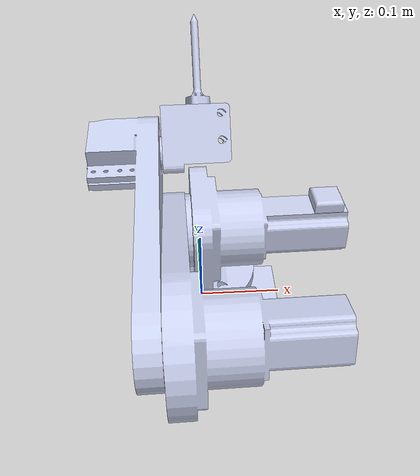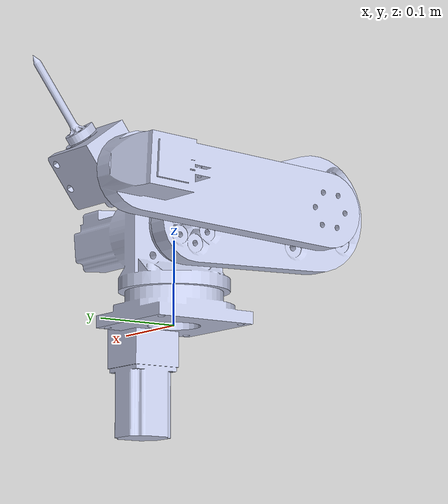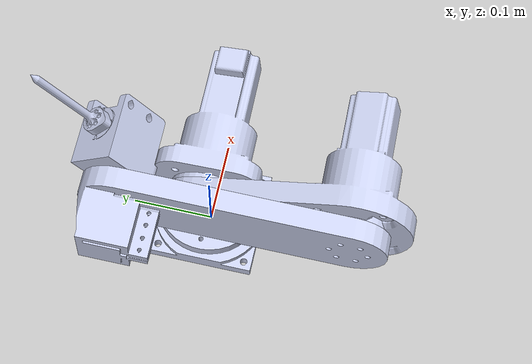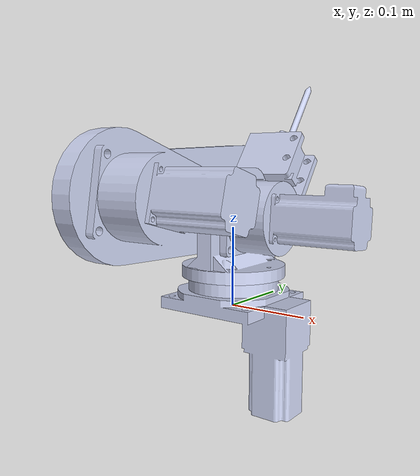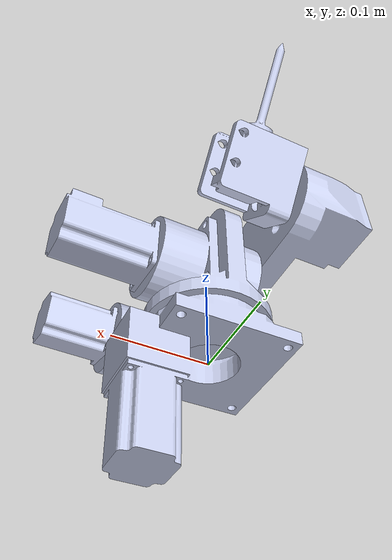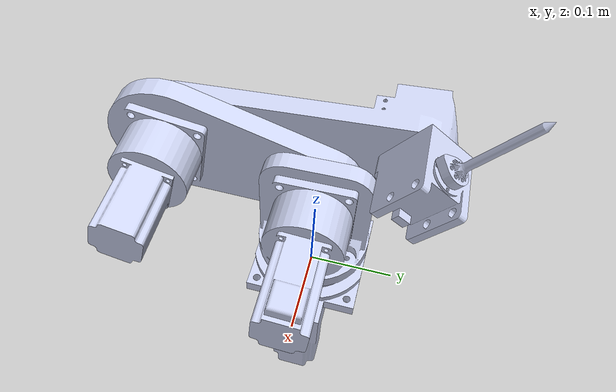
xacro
<?xml version="1.0"?>
<robot xmlns:xacro="http://www.ros.org/wiki/xacro" name="armassem1">
    <xacro:arg name="initial_positions_file" default="initial_positions.yaml" />
    <xacro:arg name="use_mock_hardware" default="true" />
    <xacro:arg name="serial_port" default="/dev/ttyACM0" />
    <xacro:arg name="baud_rate" default="115200" />

    <!-- Import armassem1 urdf file -->
    <xacro:include filename="$(find my_robot_description)/urdf/armassem1.urdf" />

    <!-- Import control_xacro -->
    <xacro:include filename="armassem1.ros2_control.xacro" />

    <xacro:armassem1_ros2_control
        name="ArmAssem1System"
        initial_positions_file="$(arg initial_positions_file)"
        use_mock_hardware="$(arg use_mock_hardware)"
        serial_port="$(arg serial_port)"
        baud_rate="$(arg baud_rate)"/>

</robot>

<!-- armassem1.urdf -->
<robot
  name="armassem1">
  <link
    name="base_link">
    <inertial>
      <origin
        xyz="0.0349237105962137 9.43689570931383E-16 -0.0227211978020699"
        rpy="0 0 0" />
      <mass
        value="0.757810573021914" />
      <inertia
        ixx="0.000911546039100459"
        ixy="9.93119423840832E-20"
        ixz="0.000186403543827476"
        iyy="0.00138565534873441"
        iyz="1.38615041934029E-20"
        izz="0.00175776275854375" />
    </inertial>
    <visual>
      <origin
        xyz="0 0 0"
        rpy="0 0 0" />
      <geometry>
        <mesh
          filename="package://my_robot_description/meshes/base_link.STL" />
      </geometry>
      <material
        name="">
        <color
          rgba="0.792156862745098 0.819607843137255 0.933333333333333 1" />
      </material>
    </visual>
    <collision>
      <origin
        xyz="0 0 0"
        rpy="0 0 0" />
      <geometry>
        <mesh
          filename="package://my_robot_description/meshes/base_link.STL" />
      </geometry>
    </collision>
  </link>
  <link
    name="Joint_1_Link">
    <inertial>
      <origin
        xyz="0.0405469299298919 0.0626150506809338 -0.000752064518925455"
        rpy="0 0 0" />
      <mass
        value="1.20678578482328" />
      <inertia
        ixx="0.00189287213190815"
        ixy="-1.35402782159307E-05"
        ixz="-9.86704102524145E-07"
        iyy="0.00162182660523015"
        iyz="1.6034377467274E-06"
        izz="0.0017694470522458" />
    </inertial>
    <visual>
      <origin
        xyz="0 0 0"
        rpy="0 0 0" />
      <geometry>
        <mesh
          filename="package://my_robot_description/meshes/Joint_1_Link.STL" />
      </geometry>
      <material
        name="">
        <color
          rgba="0.792156862745098 0.819607843137255 0.933333333333333 1" />
      </material>
    </visual>
    <collision>
      <origin
        xyz="0 0 0"
        rpy="0 0 0" />
      <geometry>
        <mesh
          filename="package://my_robot_description/meshes/Joint_1_Link.STL" />
      </geometry>
    </collision>
  </link>
  <joint
    name="Joint_1_Joint"
    type="revolute">
    <origin
      xyz="0 0 0.0395"
      rpy="1.5707963267949 0 0" />
    <parent
      link="base_link" />
    <child
      link="Joint_1_Link" />
    <axis
      xyz="0 1 0" />
    <limit
      lower="0"
      upper="3"
      effort="10"
      velocity="10" />
    <dynamics
      damping="0.1"
      friction="0.1" />
  </joint>
  <link
    name="Joint_2_Link">
    <inertial>
      <origin
        xyz="0.141005083547914 0.0248630006521554 -0.0184917815755161"
        rpy="0 0 0" />
      <mass
        value="1.35022943079148" />
      <inertia
        ixx="0.00163542822233478"
        ixy="-0.000467823717815473"
        ixz="-4.6739922817519E-06"
        iyy="0.00420609843101496"
        iyz="-8.24151661478894E-07"
        izz="0.00493640337425489" />
    </inertial>
    <visual>
      <origin
        xyz="0 0 0"
        rpy="0 0 0" />
      <geometry>
        <mesh
          filename="package://my_robot_description/meshes/Joint_2_Link.STL" />
      </geometry>
      <material
        name="">
        <color
          rgba="0.792156862745098 0.819607843137255 0.933333333333333 1" />
      </material>
    </visual>
    <collision>
      <origin
        xyz="0 0 0"
        rpy="0 0 0" />
      <geometry>
        <mesh
          filename="package://my_robot_description/meshes/Joint_2_Link.STL" />
      </geometry>
    </collision>
  </link>
  <joint
    name="Joint_2_Joint"
    type="revolute">
    <origin
      xyz="-0.016597 0.075 0.00028971"
      rpy="0 -1.5533 0" />
    <parent
      link="Joint_1_Link" />
    <child
      link="Joint_2_Link" />
    <axis
      xyz="0 0 1" />
    <limit
      lower="0"
      upper="3"
      effort="10"
      velocity="10" />
    <dynamics
      damping="0.1"
      friction="0.1" />
  </joint>
  <link
    name="Joint_3_Link">
    <inertial>
      <origin
        xyz="-0.0378423132746606 0.163913074985648 -0.0229417264709312"
        rpy="0 0 0" />
      <mass
        value="1.00180627644925" />
      <inertia
        ixx="0.00899364481371942"
        ixy="0.00186483025601723"
        ixz="-0.000148170720752349"
        iyy="0.00134432679410632"
        iyz="0.000641797835347055"
        izz="0.00962203685211232" />
    </inertial>
    <visual>
      <origin
        xyz="0 0 0"
        rpy="0 0 0" />
      <geometry>
        <mesh
          filename="package://my_robot_description/meshes/Joint_3_Link.STL" />
      </geometry>
      <material
        name="">
        <color
          rgba="0.792156862745098 0.819607843137255 0.933333333333333 1" />
      </material>
    </visual>
    <collision>
      <origin
        xyz="0 0 0"
        rpy="0 0 0" />
      <geometry>
        <mesh
          filename="package://my_robot_description/meshes/Joint_3_Link.STL" />
      </geometry>
    </collision>
  </link>
  <joint
    name="Joint_3_Joint"
    type="revolute">
    <origin
      xyz="0.177265395542198 0.0312566719800476 0.0266"
      rpy="-3.14159265358979 0 -1.39626340159547" />
    <parent
      link="Joint_2_Link" />
    <child
      link="Joint_3_Link" />
    <axis
      xyz="0 0 1" />
    <limit
      lower="0"
      upper="3"
      effort="10"
      velocity="10" />
    <dynamics
      damping="0.1"
      friction="0.1" />
  </joint>
  <link
    name="Joint_4_Link">
    <inertial>
      <origin
        xyz="0.0127282167932845 0.0345924928063405 -0.0151688980907147"
        rpy="0 0 0" />
      <mass
        value="0.288410929877738" />
      <inertia
        ixx="0.000222449744842067"
        ixy="-3.42038497163042E-06"
        ixz="1.41427504243203E-05"
        iyy="0.000219463160870434"
        iyz="4.07625607799588E-06"
        izz="0.000217462247879599" />
    </inertial>
    <visual>
      <origin
        xyz="0 0 0"
        rpy="0 0 0" />
      <geometry>
        <mesh
          filename="package://my_robot_description/meshes/Joint_4_Link.STL" />
      </geometry>
      <material
        name="">
        <color
          rgba="0.792156862745098 0.819607843137255 0.933333333333333 1" />
      </material>
    </visual>
    <collision>
      <origin
        xyz="0 0 0"
        rpy="0 0 0" />
      <geometry>
        <mesh
          filename="package://my_robot_description/meshes/Joint_4_Link.STL" />
      </geometry>
    </collision>
  </link>
  <joint
    name="Joint_4_Joint"
    type="revolute">
    <origin
      xyz="-0.0607367846728427 0.263079917492014 0.00300000000000001"
      rpy="1.5707963267949 0 1.79768912955416" />
    <parent
      link="Joint_3_Link" />
    <child
      link="Joint_4_Link" />
    <axis
      xyz="0 -1 0" />
    <limit
      lower="0"
      upper="2"
      effort="10"
      velocity="10" />
    <dynamics
      damping="0.1"
      friction="0.1" />
  </joint>
  <link
    name="Joint_5_Link">
    <inertial>
      <origin
        xyz="0.000234576046742874 0.000875407587219462 0.029004981155034"
        rpy="0 0 0" />
      <mass
        value="0.0129960868512426" />
      <inertia
        ixx="1.35852137245841E-05"
        ixy="-4.40597431683759E-08"
        ixz="7.318151748862E-08"
        iyy="1.3432556587972E-05"
        iyz="2.73113871302968E-07"
        izz="9.8108922060891E-07" />
    </inertial>
    <visual>
      <origin
        xyz="0 0 0"
        rpy="0 0 0" />
      <geometry>
        <mesh
          filename="package://my_robot_description/meshes/Joint_5_Link.STL" />
      </geometry>
      <material
        name="">
        <color
          rgba="0.792156862745098 0.819607843137255 0.933333333333333 1" />
      </material>
    </visual>
    <collision>
      <origin
        xyz="0 0 0"
        rpy="0 0 0" />
      <geometry>
        <mesh
          filename="package://my_robot_description/meshes/Joint_5_Link.STL" />
      </geometry>
    </collision>
  </link>
  <joint
    name="Joint_5_Joint"
    type="revolute">
    <origin
      xyz="0.0359961061424462 0.046 -0.0428984888146627"
      rpy="-2.44346095279206 0 -1.5707963267949" />
    <parent
      link="Joint_4_Link" />
    <child
      link="Joint_5_Link" />
    <axis
      xyz="0 0 -1" />
    <limit
      lower="0"
      upper="4"
      effort="10"
      velocity="10" />
    <dynamics
      damping="0.1"
      friction="0.1" />
  </joint>
</robot>
